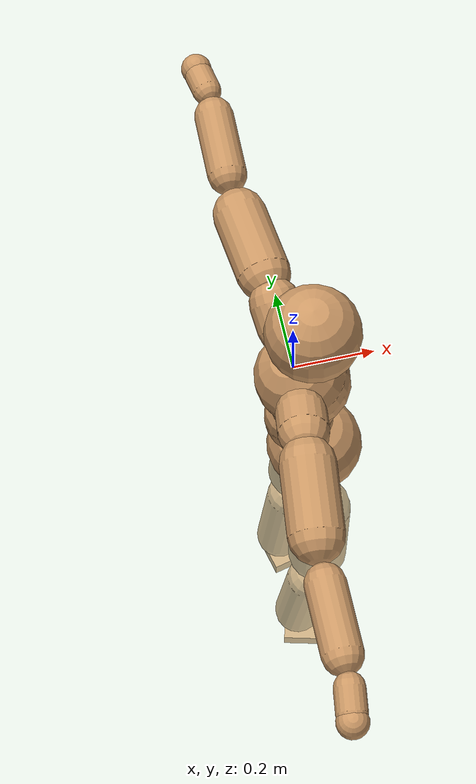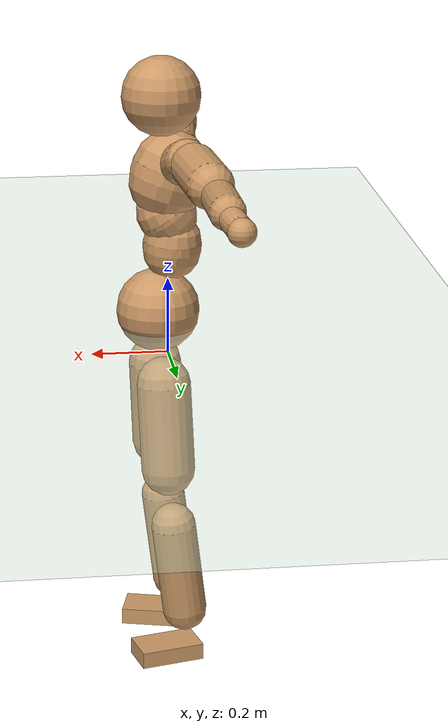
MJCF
<mujoco model="humanoid">
  <compiler coordinate="local"/>
  <default>
    <joint damping="0.0" armature="0.01" stiffness="0.0" limited="true"/>
    <geom conaffinity="1" condim="3" contype="7" margin="0.001" rgba="0.8 0.6 .4 1"/>
  </default>
  <asset>
    <texture type="skybox" builtin="gradient" rgb1=".4 .5 .6" rgb2="0 0 0" width="100" height="100"/>
    <texture builtin="flat" height="1278" mark="cross" markrgb="1 1 1" name="texgeom" random="0.01" rgb1="0.8 0.6 0.4" rgb2="0.8 0.6 0.4" type="cube" width="127"/>
    <texture builtin="checker" height="100" name="texplane" rgb1="0 0 0" rgb2="0.8 0.8 0.8" type="2d" width="100"/>
    <material name="MatPlane" reflectance="0.5" shininess="1" specular="1" texrepeat="60 60" texture="texplane"/>
    <material name="geom" texture="texgeom" texuniform="true"/>
  </asset>
  <worldbody>
    <light cutoff="100" diffuse="1 1 1" dir="-0 0 -1.3" directional="true" exponent="1" pos="0 0 1.3" specular=".1 .1 .1"/>
    <geom conaffinity="1" condim="3" name="floor" pos="0 0 0" rgba="0.8 0.9 0.8 1" size="100 100 .2" type="plane" material="MatPlane"/>
    <body name="Pelvis" pos="0.0012 -0.2208 0.0424">
      <freejoint name="Pelvis"/>
      <geom type="sphere" contype="1" conaffinity="1" density="500" size="0.1124" pos="0.0000 0.0000 0.0000" name="Pelvis"/>
      <body name="L_Hip" pos="-0.0014 0.0861 -0.0998">
        <joint name="L_Hip_x" type="hinge" pos="0 0 0" axis="1 0 0" stiffness="800" damping="80" armature="0.02" range="-180.0000 180.0000"/>
        <joint name="L_Hip_y" type="hinge" pos="0 0 0" axis="0 1 0" stiffness="800" damping="80" armature="0.02" range="-180.0000 180.0000"/>
        <joint name="L_Hip_z" type="hinge" pos="0 0 0" axis="0 0 1" stiffness="800" damping="80" armature="0.02" range="-180.0000 180.0000"/>
        <geom type="capsule" contype="1" conaffinity="1" density="500" fromto="-0.0035 0.0060 -0.0803 -0.0139 0.0240 -0.3213" size="0.0726" name="L_Hip"/>
        <body name="L_Knee" pos="-0.0174 0.03 -0.4017">
          <joint name="L_Knee_x" type="hinge" pos="0 0 0" axis="1 0 0" stiffness="800" damping="80" armature="0.02" range="-180.0000 180.0000"/>
          <joint name="L_Knee_y" type="hinge" pos="0 0 0" axis="0 1 0" stiffness="800" damping="80" armature="0.02" range="-180.0000 180.0000"/>
          <joint name="L_Knee_z" type="hinge" pos="0 0 0" axis="0 0 1" stiffness="800" damping="80" armature="0.02" range="-180.0000 180.0000"/>
          <geom type="capsule" contype="1" conaffinity="1" density="500" fromto="-0.0107 -0.0023 -0.0858 -0.0430 -0.0091 -0.3433" size="0.061" name="L_Knee"/>
          <body name="L_Ankle" pos="-0.0537 -0.0113 -0.4291">
            <joint name="L_Ankle_x" type="hinge" pos="0 0 0" axis="1 0 0" stiffness="800" damping="80" armature="0.02" range="-180.0000 180.0000"/>
            <joint name="L_Ankle_y" type="hinge" pos="0 0 0" axis="0 1 0" stiffness="800" damping="80" armature="0.02" range="-180.0000 180.0000"/>
            <joint name="L_Ankle_z" type="hinge" pos="0 0 0" axis="0 0 1" stiffness="800" damping="80" armature="0.02" range="-180.0000 180.0000"/>
            <geom type="box" contype="1" conaffinity="1" density="500" pos="0.0612 0.0148 -0.0306" size="0.0882 0.0522 0.0226" quat="0.9930 0.0000 0.0000 0.1183" name="L_Ankle"/>
            <body name="L_Toe" pos="0.1225 0.0296 -0.0613">
              <joint name="L_Toe_x" type="hinge" pos="0 0 0" axis="1 0 0" stiffness="500" damping="50" armature="0.02" range="-180.0000 180.0000"/>
              <joint name="L_Toe_y" type="hinge" pos="0 0 0" axis="0 1 0" stiffness="500" damping="50" armature="0.02" range="-180.0000 180.0000"/>
              <joint name="L_Toe_z" type="hinge" pos="0 0 0" axis="0 0 1" stiffness="500" damping="50" armature="0.02" range="-180.0000 180.0000"/>
              <geom type="box" contype="1" conaffinity="1" density="500" pos="0.0000 0.0000 0.0313" size="0.001 0.0026 0.0012" quat="0.9923 0.0000 0.0000 0.1240" name="L_Toe"/>
            </body>
          </body>
        </body>
      </body>
      <body name="R_Hip" pos="0.002 -0.0831 -0.1">
        <joint name="R_Hip_x" type="hinge" pos="0 0 0" axis="1 0 0" stiffness="800" damping="80" armature="0.02" range="-180.0000 180.0000"/>
        <joint name="R_Hip_y" type="hinge" pos="0 0 0" axis="0 1 0" stiffness="800" damping="80" armature="0.02" range="-180.0000 180.0000"/>
        <joint name="R_Hip_z" type="hinge" pos="0 0 0" axis="0 0 1" stiffness="800" damping="80" armature="0.02" range="-180.0000 180.0000"/>
        <geom type="capsule" contype="1" conaffinity="1" density="500" fromto="-0.0039 -0.0076 -0.0813 -0.0155 -0.0305 -0.3253" size="0.0718" name="R_Hip"/>
        <body name="R_Knee" pos="-0.0193 -0.0381 -0.4066">
          <joint name="R_Knee_x" type="hinge" pos="0 0 0" axis="1 0 0" stiffness="800" damping="80" armature="0.02" range="-180.0000 180.0000"/>
          <joint name="R_Knee_y" type="hinge" pos="0 0 0" axis="0 1 0" stiffness="800" damping="80" armature="0.02" range="-180.0000 180.0000"/>
          <joint name="R_Knee_z" type="hinge" pos="0 0 0" axis="0 0 1" stiffness="800" damping="80" armature="0.02" range="-180.0000 180.0000"/>
          <geom type="capsule" contype="1" conaffinity="1" density="500" fromto="-0.0105 0.0028 -0.0862 -0.0421 0.0111 -0.3448" size="0.0608" name="R_Knee"/>
          <body name="R_Ankle" pos="-0.0526 0.0139 -0.431">
            <joint name="R_Ankle_x" type="hinge" pos="0 0 0" axis="1 0 0" stiffness="800" damping="80" armature="0.02" range="-180.0000 180.0000"/>
            <joint name="R_Ankle_y" type="hinge" pos="0 0 0" axis="0 1 0" stiffness="800" damping="80" armature="0.02" range="-180.0000 180.0000"/>
            <joint name="R_Ankle_z" type="hinge" pos="0 0 0" axis="0 0 1" stiffness="800" damping="80" armature="0.02" range="-180.0000 180.0000"/>
            <geom type="box" contype="1" conaffinity="1" density="500" pos="0.0636 -0.0161 -0.0265" size="0.0895 0.0515 0.0225" quat="0.9924 0.0000 0.0000 -0.1233" name="R_Ankle"/>
            <body name="R_Toe" pos="0.1272 -0.0321 -0.053">
              <joint name="R_Toe_x" type="hinge" pos="0 0 0" axis="1 0 0" stiffness="500" damping="50" armature="0.02" range="-180.0000 180.0000"/>
              <joint name="R_Toe_y" type="hinge" pos="0 0 0" axis="0 1 0" stiffness="500" damping="50" armature="0.02" range="-180.0000 180.0000"/>
              <joint name="R_Toe_z" type="hinge" pos="0 0 0" axis="0 0 1" stiffness="500" damping="50" armature="0.02" range="-180.0000 180.0000"/>
              <geom type="box" contype="1" conaffinity="1" density="500" pos="0.0000 0.0000 0.0287" size="0.001 0.0025 0.0012" quat="0.9935 0.0000 0.0000 -0.1143" name="R_Toe"/>
            </body>
          </body>
        </body>
      </body>
      <body name="Torso" pos="-0.0349 -0.0023 0.1155">
        <joint name="Torso_x" type="hinge" pos="0 0 0" axis="1 0 0" stiffness="1000" damping="100" armature="0.02" range="-180.0000 180.0000"/>
        <joint name="Torso_y" type="hinge" pos="0 0 0" axis="0 1 0" stiffness="1000" damping="100" armature="0.02" range="-180.0000 180.0000"/>
        <joint name="Torso_z" type="hinge" pos="0 0 0" axis="0 0 1" stiffness="1000" damping="100" armature="0.02" range="-180.0000 180.0000"/>
        <geom type="capsule" contype="1" conaffinity="1" density="500" fromto="-0.0039 0.0016 0.0746 -0.0026 0.0011 0.0498" size="0.078306" name="Torso"/>
        <body name="Spine" pos="-0.0065 0.0027 0.1244">
          <joint name="Spine_x" type="hinge" pos="0 0 0" axis="1 0 0" stiffness="1000" damping="100" armature="0.02" range="-180.0000 180.0000"/>
          <joint name="Spine_y" type="hinge" pos="0 0 0" axis="0 1 0" stiffness="1000" damping="100" armature="0.02" range="-180.0000 180.0000"/>
          <joint name="Spine_z" type="hinge" pos="0 0 0" axis="0 0 1" stiffness="1000" damping="100" armature="0.02" range="-180.0000 180.0000"/>
          <geom type="capsule" contype="1" conaffinity="1" density="500" fromto="0.0221 0.0007 0.0312 0.0147 0.0005 0.0208" size="0.078306" name="Spine"/>
          <body name="Chest" pos="0.0368 0.0012 0.0519">
            <joint name="Chest_x" type="hinge" pos="0 0 0" axis="1 0 0" stiffness="1000" damping="100" armature="0.02" range="-180.0000 180.0000"/>
            <joint name="Chest_y" type="hinge" pos="0 0 0" axis="0 1 0" stiffness="1000" damping="100" armature="0.02" range="-180.0000 180.0000"/>
            <joint name="Chest_z" type="hinge" pos="0 0 0" axis="0 0 1" stiffness="1000" damping="100" armature="0.02" range="-180.0000 180.0000"/>
            <geom type="capsule" contype="1" conaffinity="1" density="500" fromto="-0.0303 -0.0004 0.0982 -0.0202 -0.0002 0.0655" size="0.103509" name="Chest"/>
            <body name="Neck" pos="-0.0582 -0.0006 0.2309">
              <joint name="Neck_x" type="hinge" pos="0 0 0" axis="1 0 0" stiffness="500" damping="50" armature="0.02" range="-180.0000 180.0000"/>
              <joint name="Neck_y" type="hinge" pos="0 0 0" axis="0 1 0" stiffness="500" damping="50" armature="0.02" range="-180.0000 180.0000"/>
              <joint name="Neck_z" type="hinge" pos="0 0 0" axis="0 0 1" stiffness="500" damping="50" armature="0.02" range="-180.0000 180.0000"/>
              <geom type="capsule" contype="1" conaffinity="1" density="500" fromto="0.0109 0.0003 0.0127 0.0435 0.0012 0.0506" size="0.04185" name="Neck"/>
              <body name="Head" pos="0.0544 0.0015 0.0633">
                <joint name="Head_x" type="hinge" pos="0 0 0" axis="1 0 0" stiffness="500" damping="50" armature="0.02" range="-180.0000 180.0000"/>
                <joint name="Head_y" type="hinge" pos="0 0 0" axis="0 1 0" stiffness="500" damping="50" armature="0.02" range="-180.0000 180.0000"/>
                <joint name="Head_z" type="hinge" pos="0 0 0" axis="0 0 1" stiffness="500" damping="50" armature="0.02" range="-180.0000 180.0000"/>
                <geom type="sphere" contype="1" conaffinity="1" density="500" size="0.1055" pos="0.0000 0.0000 0.0000" name="Head"/>
              </body>
            </body>
            <body name="L_Thorax" pos="-0.0436 0.0843 0.1309">
              <joint name="L_Thorax_x" type="hinge" pos="0 0 0" axis="1 0 0" stiffness="500" damping="50" armature="0.02" range="-180.0000 180.0000"/>
              <joint name="L_Thorax_y" type="hinge" pos="0 0 0" axis="0 1 0" stiffness="500" damping="50" armature="0.02" range="-180.0000 180.0000"/>
              <joint name="L_Thorax_z" type="hinge" pos="0 0 0" axis="0 0 1" stiffness="500" damping="50" armature="0.02" range="-180.0000 180.0000"/>
              <geom type="capsule" contype="1" conaffinity="1" density="500" fromto="-0.0024 0.0178 0.0070 -0.0094 0.0713 0.0281" size="0.0572" name="L_Thorax"/>
              <body name="L_Shoulder" pos="-0.0118 0.0892 0.0352">
                <joint name="L_Shoulder_x" type="hinge" pos="0 0 0" axis="1 0 0" stiffness="500" damping="50" armature="0.02" range="-720.0000 720.0000"/>
                <joint name="L_Shoulder_y" type="hinge" pos="0 0 0" axis="0 1 0" stiffness="500" damping="50" armature="0.02" range="-720.0000 720.0000"/>
                <joint name="L_Shoulder_z" type="hinge" pos="0 0 0" axis="0 0 1" stiffness="500" damping="50" armature="0.02" range="-720.0000 720.0000"/>
                <geom type="capsule" contype="1" conaffinity="1" density="500" fromto="-0.0067 0.0538 -0.0026 -0.0267 0.2152 -0.0104" size="0.0606" name="L_Shoulder"/>
                <body name="L_Elbow" pos="-0.0333 0.269 -0.0129">
                  <joint name="L_Elbow_x" type="hinge" pos="0 0 0" axis="1 0 0" stiffness="500" damping="50" armature="0.02" range="-720.0000 720.0000"/>
                  <joint name="L_Elbow_y" type="hinge" pos="0 0 0" axis="0 1 0" stiffness="500" damping="50" armature="0.02" range="-720.0000 720.0000"/>
                  <joint name="L_Elbow_z" type="hinge" pos="0 0 0" axis="0 0 1" stiffness="500" damping="50" armature="0.02" range="-720.0000 720.0000"/>
                  <geom type="capsule" contype="1" conaffinity="1" density="500" fromto="0.0004 0.0511 0.0024 0.0017 0.2042 0.0097" size="0.0449" name="L_Elbow"/>
                  <body name="L_Wrist" pos="0.0022 0.2553 0.0121">
                    <joint name="L_Wrist_x" type="hinge" pos="0 0 0" axis="1 0 0" stiffness="300" damping="30" armature="0.02" range="-180.0000 180.0000"/>
                    <joint name="L_Wrist_y" type="hinge" pos="0 0 0" axis="0 1 0" stiffness="300" damping="30" armature="0.02" range="-180.0000 180.0000"/>
                    <joint name="L_Wrist_z" type="hinge" pos="0 0 0" axis="0 0 1" stiffness="300" damping="30" armature="0.02" range="-180.0000 180.0000"/>
                    <geom type="capsule" contype="1" conaffinity="1" density="500" fromto="-0.0028 0.0172 -0.0021 -0.0114 0.0690 -0.0083" size="0.033" name="L_Wrist"/>
                    <body name="L_Hand" pos="-0.0142 0.0862 -0.0104">
                      <joint name="L_Hand_x" type="hinge" pos="0 0 0" axis="1 0 0" stiffness="300" damping="30" armature="0.02" range="-180.0000 180.0000"/>
                      <joint name="L_Hand_y" type="hinge" pos="0 0 0" axis="0 1 0" stiffness="300" damping="30" armature="0.02" range="-180.0000 180.0000"/>
                      <joint name="L_Hand_z" type="hinge" pos="0 0 0" axis="0 0 1" stiffness="300" damping="30" armature="0.02" range="-180.0000 180.0000"/>
                      <geom type="sphere" contype="1" conaffinity="1" density="500" size="0.0349" pos="0.0000 0.0000 0.0000" name="L_Hand"/>
                    </body>
                  </body>
                </body>
              </body>
            </body>
            <body name="R_Thorax" pos="-0.0498 -0.0856 0.1293">
              <joint name="R_Thorax_x" type="hinge" pos="0 0 0" axis="1 0 0" stiffness="500" damping="50" armature="0.02" range="-180.0000 180.0000"/>
              <joint name="R_Thorax_y" type="hinge" pos="0 0 0" axis="0 1 0" stiffness="500" damping="50" armature="0.02" range="-180.0000 180.0000"/>
              <joint name="R_Thorax_z" type="hinge" pos="0 0 0" axis="0 0 1" stiffness="500" damping="50" armature="0.02" range="-180.0000 180.0000"/>
              <geom type="capsule" contype="1" conaffinity="1" density="500" fromto="-0.0023 -0.0186 0.0073 -0.0090 -0.0746 0.0293" size="0.0564" name="R_Thorax"/>
              <body name="R_Shoulder" pos="-0.0113 -0.0932 0.0366">
                <joint name="R_Shoulder_x" type="hinge" pos="0 0 0" axis="1 0 0" stiffness="500" damping="50" armature="0.02" range="-720.0000 720.0000"/>
                <joint name="R_Shoulder_y" type="hinge" pos="0 0 0" axis="0 1 0" stiffness="500" damping="50" armature="0.02" range="-720.0000 720.0000"/>
                <joint name="R_Shoulder_z" type="hinge" pos="0 0 0" axis="0 0 1" stiffness="500" damping="50" armature="0.02" range="-720.0000 720.0000"/>
                <geom type="capsule" contype="1" conaffinity="1" density="500" fromto="-0.0056 -0.0532 -0.0032 -0.0225 -0.2128 -0.0129" size="0.0619" name="R_Shoulder"/>
                <body name="R_Elbow" pos="-0.0281 -0.2659 -0.0161">
                  <joint name="R_Elbow_x" type="hinge" pos="0 0 0" axis="1 0 0" stiffness="500" damping="50" armature="0.02" range="-720.0000 720.0000"/>
                  <joint name="R_Elbow_y" type="hinge" pos="0 0 0" axis="0 1 0" stiffness="500" damping="50" armature="0.02" range="-720.0000 720.0000"/>
                  <joint name="R_Elbow_z" type="hinge" pos="0 0 0" axis="0 0 1" stiffness="500" damping="50" armature="0.02" range="-720.0000 720.0000"/>
                  <geom type="capsule" contype="1" conaffinity="1" density="500" fromto="-0.0000 -0.0529 0.0028 -0.0001 -0.2115 0.0110" size="0.0454" name="R_Elbow"/>
                  <body name="R_Wrist" pos="-0.0001 -0.2644 0.0138">
                    <joint name="R_Wrist_x" type="hinge" pos="0 0 0" axis="1 0 0" stiffness="300" damping="30" armature="0.02" range="-180.0000 180.0000"/>
                    <joint name="R_Wrist_y" type="hinge" pos="0 0 0" axis="0 1 0" stiffness="300" damping="30" armature="0.02" range="-180.0000 180.0000"/>
                    <joint name="R_Wrist_z" type="hinge" pos="0 0 0" axis="0 0 1" stiffness="300" damping="30" armature="0.02" range="-180.0000 180.0000"/>
                    <geom type="capsule" contype="1" conaffinity="1" density="500" fromto="-0.0023 -0.0175 -0.0016 -0.0093 -0.0699 -0.0063" size="0.0339" name="R_Wrist"/>
                    <body name="R_Hand" pos="-0.0116 -0.0874 -0.0079">
                      <joint name="R_Hand_x" type="hinge" pos="0 0 0" axis="1 0 0" stiffness="300" damping="30" armature="0.02" range="-180.0000 180.0000"/>
                      <joint name="R_Hand_y" type="hinge" pos="0 0 0" axis="0 1 0" stiffness="300" damping="30" armature="0.02" range="-180.0000 180.0000"/>
                      <joint name="R_Hand_z" type="hinge" pos="0 0 0" axis="0 0 1" stiffness="300" damping="30" armature="0.02" range="-180.0000 180.0000"/>
                      <geom type="sphere" contype="1" conaffinity="1" density="500" size="0.0353" pos="0.0000 0.0000 0.0000" name="R_Hand"/>
                    </body>
                  </body>
                </body>
              </body>
            </body>
          </body>
        </body>
      </body>
    </body>
  </worldbody>
  <actuator>
    <motor name="L_Hip_x" joint="L_Hip_x" gear="500"/>
    <motor name="L_Hip_y" joint="L_Hip_y" gear="500"/>
    <motor name="L_Hip_z" joint="L_Hip_z" gear="500"/>
    <motor name="L_Knee_x" joint="L_Knee_x" gear="500"/>
    <motor name="L_Knee_y" joint="L_Knee_y" gear="500"/>
    <motor name="L_Knee_z" joint="L_Knee_z" gear="500"/>
    <motor name="L_Ankle_x" joint="L_Ankle_x" gear="500"/>
    <motor name="L_Ankle_y" joint="L_Ankle_y" gear="500"/>
    <motor name="L_Ankle_z" joint="L_Ankle_z" gear="500"/>
    <motor name="L_Toe_x" joint="L_Toe_x" gear="500"/>
    <motor name="L_Toe_y" joint="L_Toe_y" gear="500"/>
    <motor name="L_Toe_z" joint="L_Toe_z" gear="500"/>
    <motor name="R_Hip_x" joint="R_Hip_x" gear="500"/>
    <motor name="R_Hip_y" joint="R_Hip_y" gear="500"/>
    <motor name="R_Hip_z" joint="R_Hip_z" gear="500"/>
    <motor name="R_Knee_x" joint="R_Knee_x" gear="500"/>
    <motor name="R_Knee_y" joint="R_Knee_y" gear="500"/>
    <motor name="R_Knee_z" joint="R_Knee_z" gear="500"/>
    <motor name="R_Ankle_x" joint="R_Ankle_x" gear="500"/>
    <motor name="R_Ankle_y" joint="R_Ankle_y" gear="500"/>
    <motor name="R_Ankle_z" joint="R_Ankle_z" gear="500"/>
    <motor name="R_Toe_x" joint="R_Toe_x" gear="500"/>
    <motor name="R_Toe_y" joint="R_Toe_y" gear="500"/>
    <motor name="R_Toe_z" joint="R_Toe_z" gear="500"/>
    <motor name="Torso_x" joint="Torso_x" gear="500"/>
    <motor name="Torso_y" joint="Torso_y" gear="500"/>
    <motor name="Torso_z" joint="Torso_z" gear="500"/>
    <motor name="Spine_x" joint="Spine_x" gear="500"/>
    <motor name="Spine_y" joint="Spine_y" gear="500"/>
    <motor name="Spine_z" joint="Spine_z" gear="500"/>
    <motor name="Chest_x" joint="Chest_x" gear="500"/>
    <motor name="Chest_y" joint="Chest_y" gear="500"/>
    <motor name="Chest_z" joint="Chest_z" gear="500"/>
    <motor name="Neck_x" joint="Neck_x" gear="500"/>
    <motor name="Neck_y" joint="Neck_y" gear="500"/>
    <motor name="Neck_z" joint="Neck_z" gear="500"/>
    <motor name="Head_x" joint="Head_x" gear="500"/>
    <motor name="Head_y" joint="Head_y" gear="500"/>
    <motor name="Head_z" joint="Head_z" gear="500"/>
    <motor name="L_Thorax_x" joint="L_Thorax_x" gear="500"/>
    <motor name="L_Thorax_y" joint="L_Thorax_y" gear="500"/>
    <motor name="L_Thorax_z" joint="L_Thorax_z" gear="500"/>
    <motor name="L_Shoulder_x" joint="L_Shoulder_x" gear="500"/>
    <motor name="L_Shoulder_y" joint="L_Shoulder_y" gear="500"/>
    <motor name="L_Shoulder_z" joint="L_Shoulder_z" gear="500"/>
    <motor name="L_Elbow_x" joint="L_Elbow_x" gear="500"/>
    <motor name="L_Elbow_y" joint="L_Elbow_y" gear="500"/>
    <motor name="L_Elbow_z" joint="L_Elbow_z" gear="500"/>
    <motor name="L_Wrist_x" joint="L_Wrist_x" gear="500"/>
    <motor name="L_Wrist_y" joint="L_Wrist_y" gear="500"/>
    <motor name="L_Wrist_z" joint="L_Wrist_z" gear="500"/>
    <motor name="L_Hand_x" joint="L_Hand_x" gear="500"/>
    <motor name="L_Hand_y" joint="L_Hand_y" gear="500"/>
    <motor name="L_Hand_z" joint="L_Hand_z" gear="500"/>
    <motor name="R_Thorax_x" joint="R_Thorax_x" gear="500"/>
    <motor name="R_Thorax_y" joint="R_Thorax_y" gear="500"/>
    <motor name="R_Thorax_z" joint="R_Thorax_z" gear="500"/>
    <motor name="R_Shoulder_x" joint="R_Shoulder_x" gear="500"/>
    <motor name="R_Shoulder_y" joint="R_Shoulder_y" gear="500"/>
    <motor name="R_Shoulder_z" joint="R_Shoulder_z" gear="500"/>
    <motor name="R_Elbow_x" joint="R_Elbow_x" gear="500"/>
    <motor name="R_Elbow_y" joint="R_Elbow_y" gear="500"/>
    <motor name="R_Elbow_z" joint="R_Elbow_z" gear="500"/>
    <motor name="R_Wrist_x" joint="R_Wrist_x" gear="500"/>
    <motor name="R_Wrist_y" joint="R_Wrist_y" gear="500"/>
    <motor name="R_Wrist_z" joint="R_Wrist_z" gear="500"/>
    <motor name="R_Hand_x" joint="R_Hand_x" gear="500"/>
    <motor name="R_Hand_y" joint="R_Hand_y" gear="500"/>
    <motor name="R_Hand_z" joint="R_Hand_z" gear="500"/>
  </actuator>
  <contact>
    <exclude body1="Torso" body2="Chest"/>
    <exclude body1="Head" body2="Chest"/>
    <exclude body1="R_Knee" body2="R_Toe"/>
    <exclude body1="R_Knee" body2="L_Ankle"/>
    <exclude body1="R_Knee" body2="L_Toe"/>
    <exclude body1="L_Knee" body2="L_Toe"/>
    <exclude body1="L_Knee" body2="R_Ankle"/>
    <exclude body1="L_Knee" body2="R_Toe"/>
    <exclude body1="L_Shoulder" body2="Chest"/>
    <exclude body1="R_Shoulder" body2="Chest"/>
  </contact>
  <sensor/>
  <size njmax="700" nconmax="700"/>
</mujoco>
